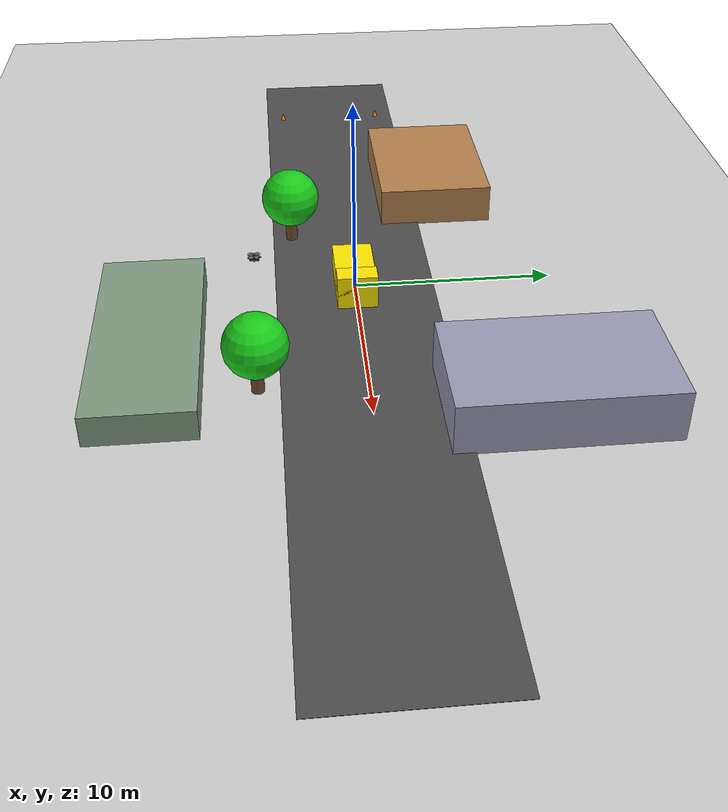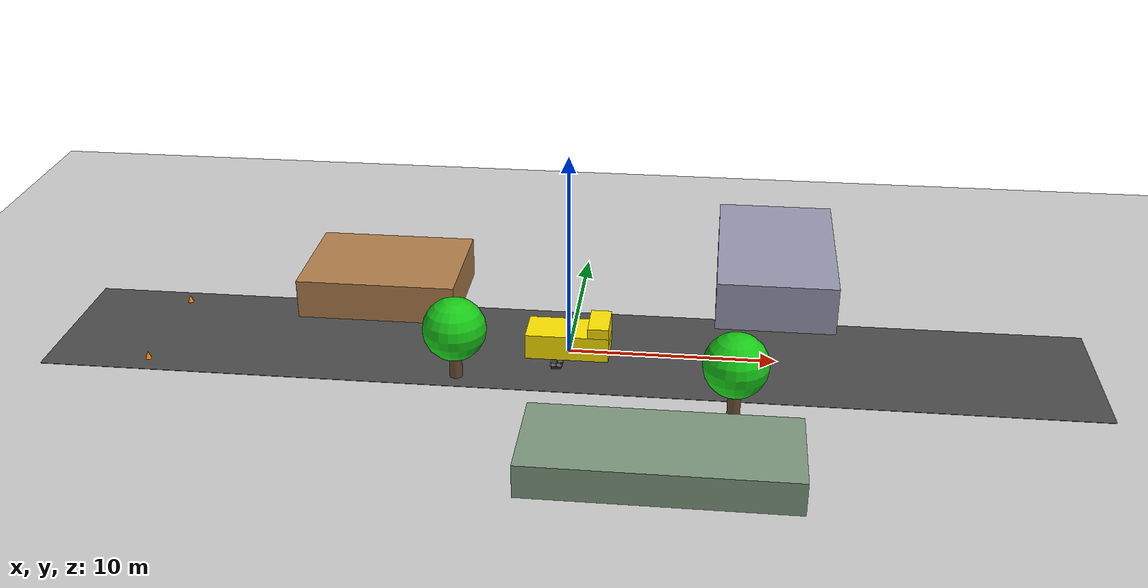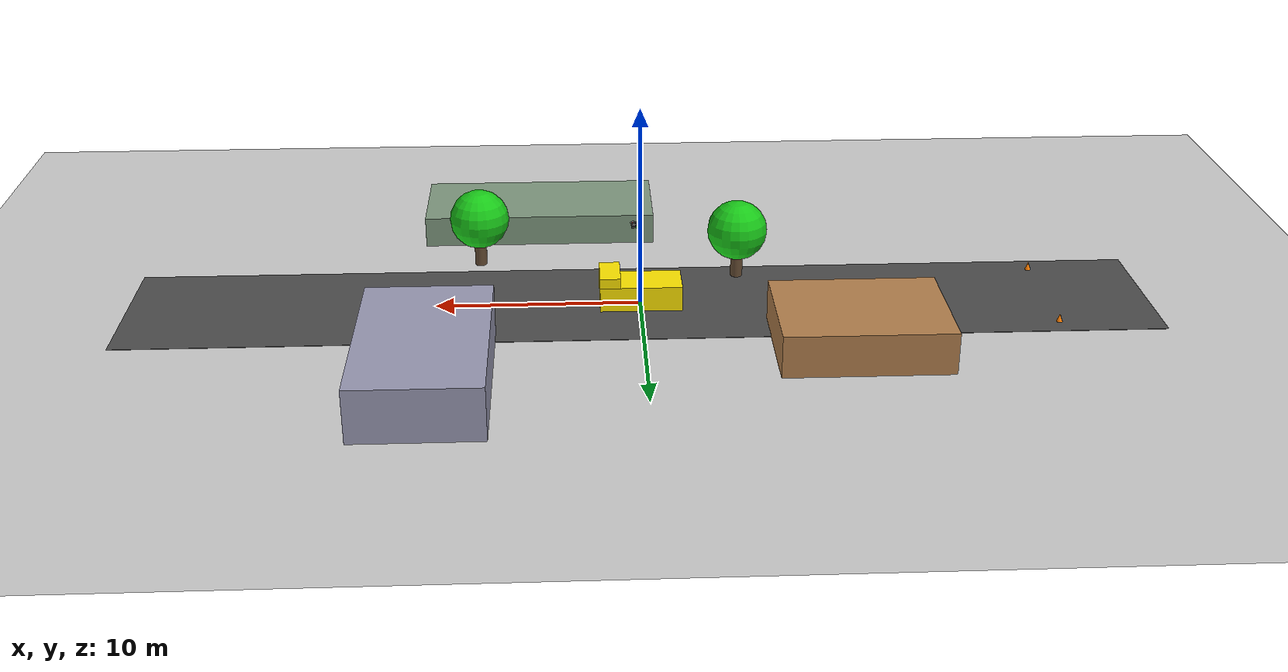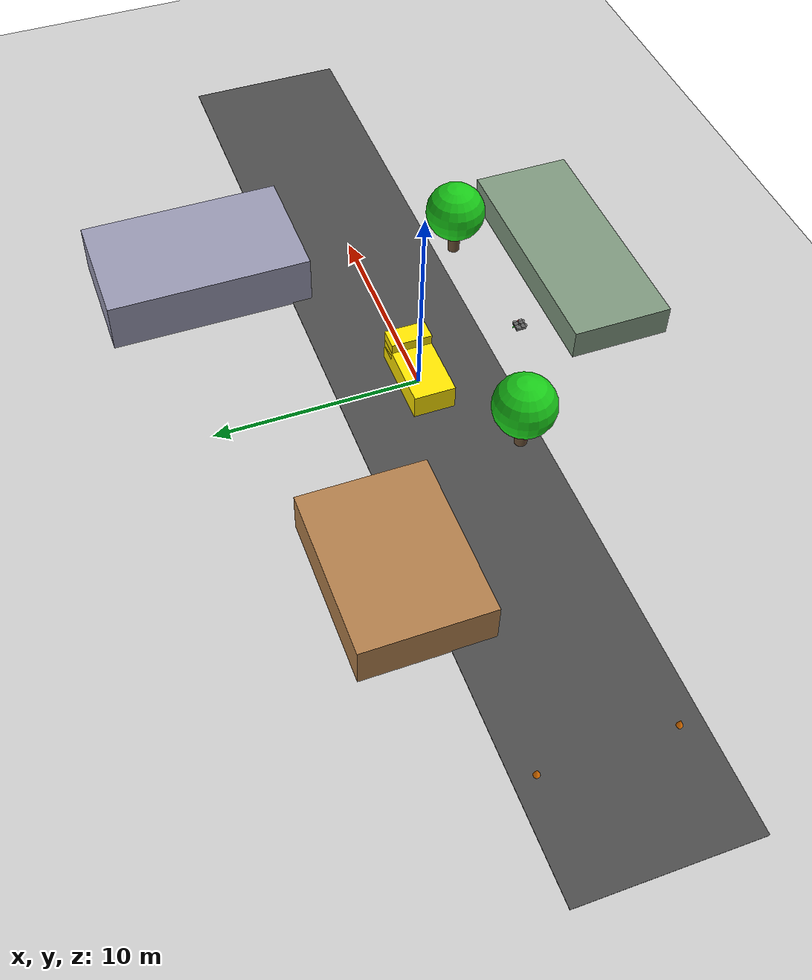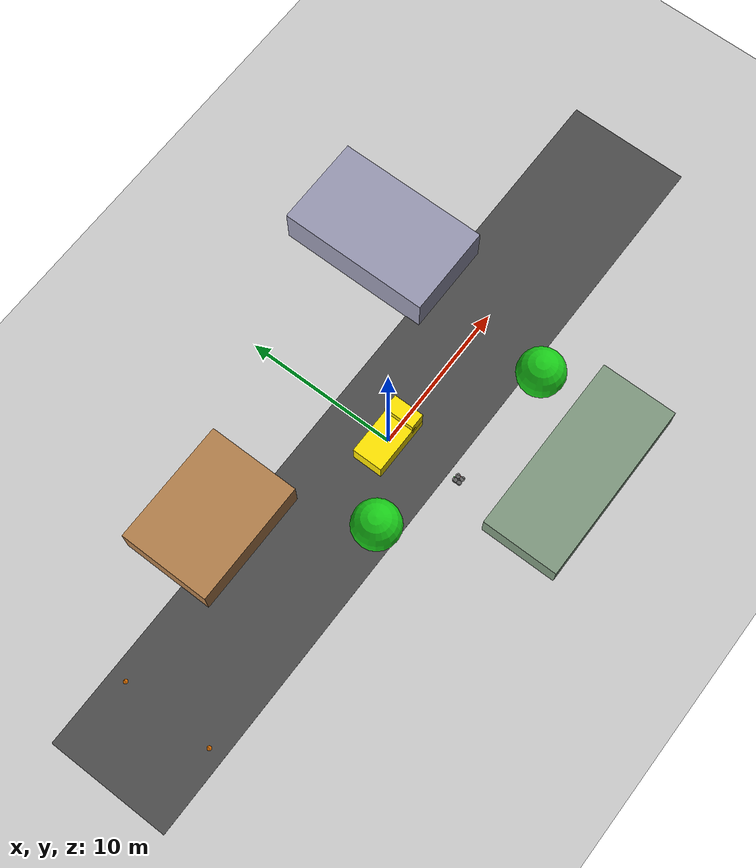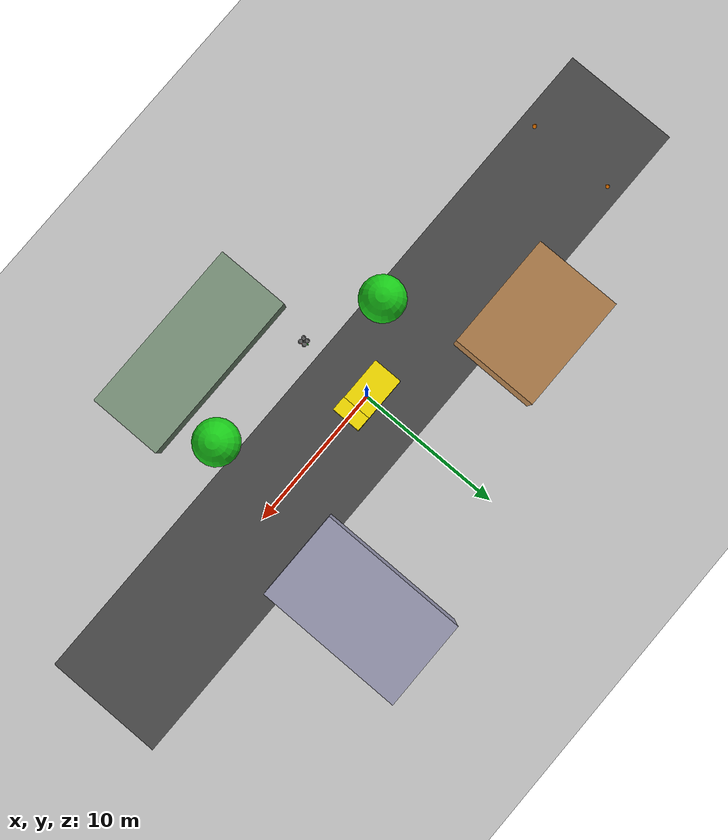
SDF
<?xml version="1.0" ?>
<sdf version="1.9">
  <world name="truck_following_world">

    <!-- Physics -->
    <physics name="1ms" type="ignored">
      <max_step_size>0.001</max_step_size>
      <real_time_factor>1.0</real_time_factor>
    </physics>

    <!-- Plugins -->
    <plugin filename="gz-sim-physics-system" name="gz::sim::systems::Physics"/>
    <plugin filename="gz-sim-user-commands-system" name="gz::sim::systems::UserCommands"/>
    <plugin filename="gz-sim-scene-broadcaster-system" name="gz::sim::systems::SceneBroadcaster"/>
    <plugin filename="gz-sim-sensors-system" name="gz::sim::systems::Sensors">
      <render_engine>ogre2</render_engine>
    </plugin>

    <!-- Lighting -->
    <light type="directional" name="sun">
      <cast_shadows>true</cast_shadows>
      <pose>0 0 10 0 0 0</pose>
      <diffuse>0.8 0.8 0.8 1</diffuse>
      <specular>0.2 0.2 0.2 1</specular>
      <attenuation>
        <range>1000</range>
        <constant>0.9</constant>
        <linear>0.01</linear>
        <quadratic>0.001</quadratic>
      </attenuation>
      <direction>-0.5 0.1 -0.9</direction>
    </light>

    <!-- Ground plane -->
    <model name="ground_plane">
      <static>true</static>
      <link name="link">
        <collision name="collision">
          <geometry>
            <plane>
              <normal>0 0 1</normal>
              <size>100 100</size>
            </plane>
          </geometry>
        </collision>
        <visual name="visual">
          <geometry>
            <plane>
              <normal>0 0 1</normal>
              <size>100 100</size>
            </plane>
          </geometry>
          <material>
            <ambient>0.8 0.8 0.8 1</ambient>
            <diffuse>0.8 0.8 0.8 1</diffuse>
            <specular>0.8 0.8 0.8 1</specular>
          </material>
        </visual>
      </link>
    </model>

    <!-- Road (simple gray plane) -->
    <model name="road">
      <static>true</static>
      <pose>0 0 0.01 0 0 0</pose>
      <link name="link">
        <visual name="visual">
          <geometry>
            <box>
              <size>50 8 0.02</size>
            </box>
          </geometry>
          <material>
            <ambient>0.3 0.3 0.3 1</ambient>
            <diffuse>0.3 0.3 0.3 1</diffuse>
          </material>
        </visual>
      </link>
    </model>

    <!-- Yellow Truck with animated movement -->
    <model name="yellow_truck">
      <pose>0 0 0.5 0 0 0</pose>
      <static>false</static>

      <!-- Define the truck visual as part of the actor -->
      <link name="chassis">
        <inertial>
          <mass>500</mass>
          <inertia>
            <ixx>100</ixx>
            <iyy>200</iyy>
            <izz>100</izz>
          </inertia>
        </inertial>

        <!-- Truck body -->
        <visual name="body">
          <geometry>
            <box>
              <size>4 2 1.5</size>
            </box>
          </geometry>
          <material>
            <ambient>1.0 0.9 0.0 1</ambient>
            <diffuse>1.0 0.9 0.0 1</diffuse>
            <specular>0.5 0.5 0.5 1</specular>
          </material>
        </visual>

        <!-- Truck cab -->
        <visual name="cab">
          <pose>1.5 0 0.75 0 0 0</pose>
          <geometry>
            <box>
              <size>1 2 1</size>
            </box>
          </geometry>
          <material>
            <ambient>1.0 0.9 0.0 1</ambient>
            <diffuse>1.0 0.9 0.0 1</diffuse>
          </material>
        </visual>

        <collision name="body_collision">
          <geometry>
            <box>
              <size>4 2 1.5</size>
            </box>
          </geometry>
        </collision>
      </link>

      <!-- Plugin to move truck along path -->
      <plugin filename="gz-sim-pose-publisher-system" name="gz::sim::systems::PosePublisher">
        <publish_link_pose>true</publish_link_pose>
        <update_frequency>30</update_frequency>
      </plugin>
    </model>

    <!-- Quadrotor -->
    <model name="quadrotor">
      <pose>0 -5 2 0 0 0</pose>

      <link name="base_link">
        <inertial>
          <mass>1.5</mass>
          <inertia>
            <ixx>0.029125</ixx>
            <iyy>0.029125</iyy>
            <izz>0.055225</izz>
          </inertia>
        </inertial>

        <!-- Quadrotor body - make it more visible -->
        <visual name="body_visual">
          <geometry>
            <box>
              <size>0.47 0.47 0.11</size>
            </box>
          </geometry>
          <material>
            <ambient>0.1 0.1 0.1 1</ambient>
            <diffuse>0.2 0.2 0.2 1</diffuse>
          </material>
        </visual>

        <!-- Add colored arms for visibility -->
        <visual name="arm_front">
          <pose>0.2 0 0 0 0 0</pose>
          <geometry>
            <cylinder>
              <radius>0.02</radius>
              <length>0.3</length>
            </cylinder>
          </geometry>
          <material>
            <ambient>1 0 0 1</ambient>  <!-- Red front -->
            <diffuse>1 0 0 1</diffuse>
          </material>
        </visual>

        <visual name="arm_right">
          <pose>0 0.2 0 1.5707 0 0</pose>
          <geometry>
            <cylinder>
              <radius>0.02</radius>
              <length>0.3</length>
            </cylinder>
          </geometry>
          <material>
            <ambient>0 1 0 1</ambient>  <!-- Green -->
            <diffuse>0 1 0 1</diffuse>
          </material>
        </visual>

        <!-- Add propellers for better visibility -->
        <visual name="prop_1">
          <pose>0.15 0.15 0.1 0 0 0</pose>
          <geometry>
            <cylinder>
              <radius>0.15</radius>
              <length>0.02</length>
            </cylinder>
          </geometry>
          <material>
            <ambient>0.5 0.5 0.5 0.7</ambient>
            <diffuse>0.5 0.5 0.5 0.7</diffuse>
          </material>
        </visual>

        <visual name="prop_2">
          <pose>-0.15 0.15 0.1 0 0 0</pose>
          <geometry>
            <cylinder>
              <radius>0.15</radius>
              <length>0.02</length>
            </cylinder>
          </geometry>
          <material>
            <ambient>0.5 0.5 0.5 0.7</ambient>
            <diffuse>0.5 0.5 0.5 0.7</diffuse>
          </material>
        </visual>

        <visual name="prop_3">
          <pose>-0.15 -0.15 0.1 0 0 0</pose>
          <geometry>
            <cylinder>
              <radius>0.15</radius>
              <length>0.02</length>
            </cylinder>
          </geometry>
          <material>
            <ambient>0.5 0.5 0.5 0.7</ambient>
            <diffuse>0.5 0.5 0.5 0.7</diffuse>
          </material>
        </visual>

        <visual name="prop_4">
          <pose>0.15 -0.15 0.1 0 0 0</pose>
          <geometry>
            <cylinder>
              <radius>0.15</radius>
              <length>0.02</length>
            </cylinder>
          </geometry>
          <material>
            <ambient>0.5 0.5 0.5 0.7</ambient>
            <diffuse>0.5 0.5 0.5 0.7</diffuse>
          </material>
        </visual>

        <collision name="collision">
          <geometry>
            <box>
              <size>0.47 0.47 0.11</size>
            </box>
          </geometry>
        </collision>

        <!-- RGB Camera -->
        <sensor name="rgb_camera" type="camera">
          <pose>0.1 0 0 0 0 0</pose>
          <camera>
            <horizontal_fov>1.047</horizontal_fov>  <!-- 60 degrees -->
            <image>
              <width>640</width>
              <height>480</height>
              <format>R8G8B8</format>
            </image>
            <clip>
              <near>0.1</near>
              <far>100</far>
            </clip>
          </camera>
          <always_on>1</always_on>
          <update_rate>30</update_rate>
          <visualize>true</visualize>
          <topic>/quadrotor/camera/rgb/image_raw</topic>
        </sensor>

        <!-- Depth Camera -->
        <sensor name="depth_camera" type="depth_camera">
          <pose>0.1 0 0 0 0 0</pose>
          <camera>
            <horizontal_fov>1.047</horizontal_fov>
            <image>
              <width>640</width>
              <height>480</height>
              <format>R_FLOAT32</format>
            </image>
            <clip>
              <near>0.1</near>
              <far>100</far>
            </clip>
          </camera>
          <always_on>1</always_on>
          <update_rate>30</update_rate>
          <visualize>true</visualize>
          <topic>/quadrotor/camera/depth/image_raw</topic>
        </sensor>
      </link>

      <!-- Quadrotor physics and control plugins -->
      <plugin filename="gz-sim-multicopter-motor-model-system" name="gz::sim::systems::MulticopterMotorModel">
        <robotNamespace>quadrotor</robotNamespace>
        <motorNumber>0</motorNumber>
        <turningDirection>ccw</turningDirection>
      </plugin>

      <plugin filename="gz-sim-multicopter-control-system" name="gz::sim::systems::MulticopterVelocityControl">
        <robotNamespace>quadrotor</robotNamespace>
        <commandSubTopic>/quadrotor/cmd_vel</commandSubTopic>
        <motorControlPubTopic>/quadrotor/motor_speed</motorControlPubTopic>
        <enableSubTopic>/quadrotor/enable</enableSubTopic>
      </plugin>

      <plugin filename="gz-sim-odometry-publisher-system" name="gz::sim::systems::OdometryPublisher">
        <odom_topic>/quadrotor/odom</odom_topic>
        <odom_frame>quadrotor/odom</odom_frame>
        <robot_base_frame>quadrotor/base_link</robot_base_frame>
      </plugin>
    </model>

    <!-- Buildings/Obstacles for outdoor environment -->

    <!-- Building 1 - Left side -->
    <model name="building_1">
      <static>true</static>
      <pose>-10 5 0 0 0 0</pose>
      <link name="link">
        <visual name="visual">
          <geometry>
            <box>
              <size>8 6 4</size>
            </box>
          </geometry>
          <material>
            <ambient>0.7 0.5 0.3 1</ambient>
            <diffuse>0.7 0.5 0.3 1</diffuse>
          </material>
        </visual>
        <collision name="collision">
          <geometry>
            <box>
              <size>8 6 4</size>
            </box>
          </geometry>
        </collision>
      </link>
    </model>

    <!-- Building 2 - Right side -->
    <model name="building_2">
      <static>true</static>
      <pose>10 8 0 0 0 0</pose>
      <link name="link">
        <visual name="visual">
          <geometry>
            <box>
              <size>6 10 5</size>
            </box>
          </geometry>
          <material>
            <ambient>0.6 0.6 0.7 1</ambient>
            <diffuse>0.6 0.6 0.7 1</diffuse>
          </material>
        </visual>
        <collision name="collision">
          <geometry>
            <box>
              <size>6 10 5</size>
            </box>
          </geometry>
        </collision>
      </link>
    </model>

    <!-- Building 3 - Behind -->
    <model name="building_3">
      <static>true</static>
      <pose>5 -10 0 0 0 0</pose>
      <link name="link">
        <visual name="visual">
          <geometry>
            <box>
              <size>12 5 3</size>
            </box>
          </geometry>
          <material>
            <ambient>0.5 0.6 0.5 1</ambient>
            <diffuse>0.5 0.6 0.5 1</diffuse>
          </material>
        </visual>
        <collision name="collision">
          <geometry>
            <box>
              <size>12 5 3</size>
            </box>
          </geometry>
        </collision>
      </link>
    </model>

    <!-- Trees/Obstacles -->
    <model name="tree_1">
      <static>true</static>
      <pose>-5 -3 0 0 0 0</pose>
      <link name="link">
        <!-- Trunk -->
        <visual name="trunk">
          <pose>0 0 1 0 0 0</pose>
          <geometry>
            <cylinder>
              <radius>0.3</radius>
              <length>2</length>
            </cylinder>
          </geometry>
          <material>
            <ambient>0.4 0.3 0.2 1</ambient>
            <diffuse>0.4 0.3 0.2 1</diffuse>
          </material>
        </visual>
        <!-- Foliage -->
        <visual name="foliage">
          <pose>0 0 2.5 0 0 0</pose>
          <geometry>
            <sphere>
              <radius>1.5</radius>
            </sphere>
          </geometry>
          <material>
            <ambient>0.1 0.6 0.1 1</ambient>
            <diffuse>0.1 0.8 0.1 1</diffuse>
          </material>
        </visual>
      </link>
    </model>

    <model name="tree_2">
      <static>true</static>
      <pose>8 -5 0 0 0 0</pose>
      <link name="link">
        <visual name="trunk">
          <pose>0 0 1 0 0 0</pose>
          <geometry>
            <cylinder>
              <radius>0.3</radius>
              <length>2</length>
            </cylinder>
          </geometry>
          <material>
            <ambient>0.4 0.3 0.2 1</ambient>
            <diffuse>0.4 0.3 0.2 1</diffuse>
          </material>
        </visual>
        <visual name="foliage">
          <pose>0 0 2.5 0 0 0</pose>
          <geometry>
            <sphere>
              <radius>1.5</radius>
            </sphere>
          </geometry>
          <material>
            <ambient>0.1 0.6 0.1 1</ambient>
            <diffuse>0.1 0.8 0.1 1</diffuse>
          </material>
        </visual>
      </link>
    </model>

    <!-- Traffic cones/markers along road -->
    <model name="cone_1">
      <static>true</static>
      <pose>-20 -3 0 0 0 0</pose>
      <link name="link">
        <visual name="visual">
          <geometry>
            <cone>
              <radius>0.3</radius>
              <length>0.8</length>
            </cone>
          </geometry>
          <material>
            <ambient>1 0.5 0 1</ambient>  <!-- Orange -->
            <diffuse>1 0.5 0 1</diffuse>
          </material>
        </visual>
      </link>
    </model>

    <model name="cone_2">
      <static>true</static>
      <pose>-20 3 0 0 0 0</pose>
      <link name="link">
        <visual name="visual">
          <geometry>
            <cone>
              <radius>0.3</radius>
              <length>0.8</length>
            </cone>
          </geometry>
          <material>
            <ambient>1 0.5 0 1</ambient>
            <diffuse>1 0.5 0 1</diffuse>
          </material>
        </visual>
      </link>
    </model>

  </world>
</sdf>
